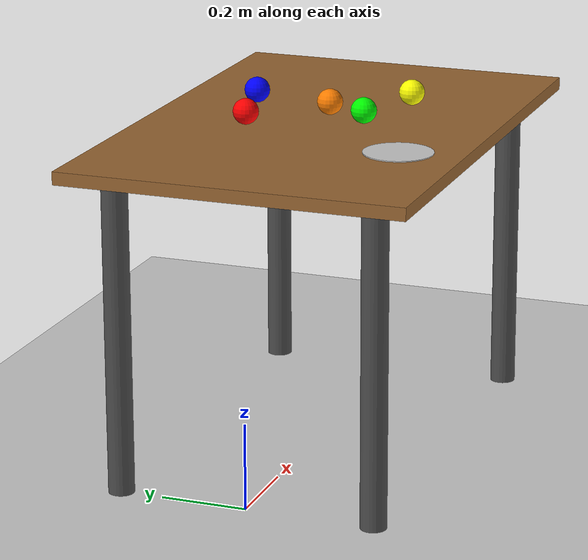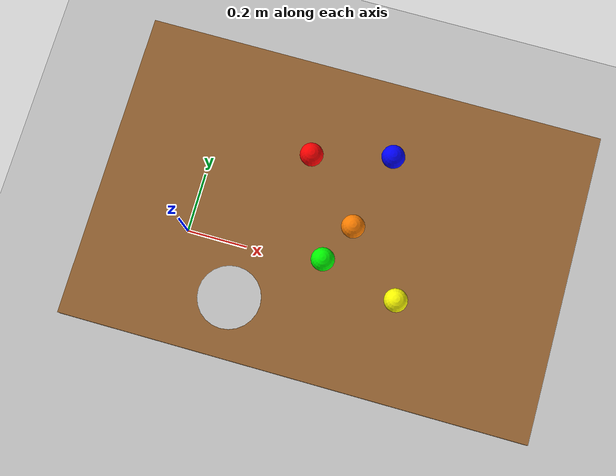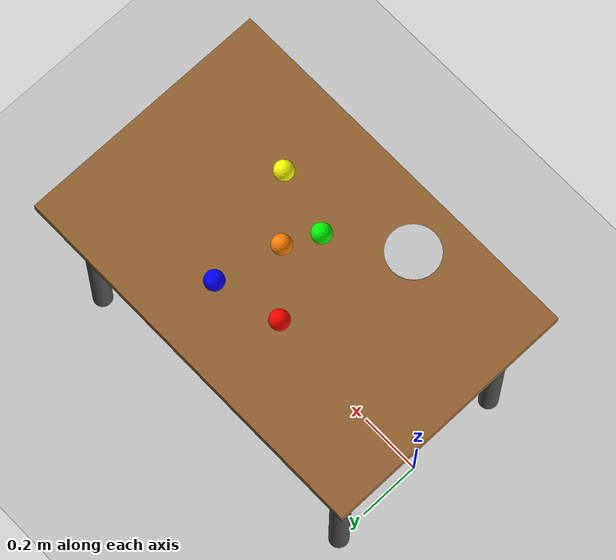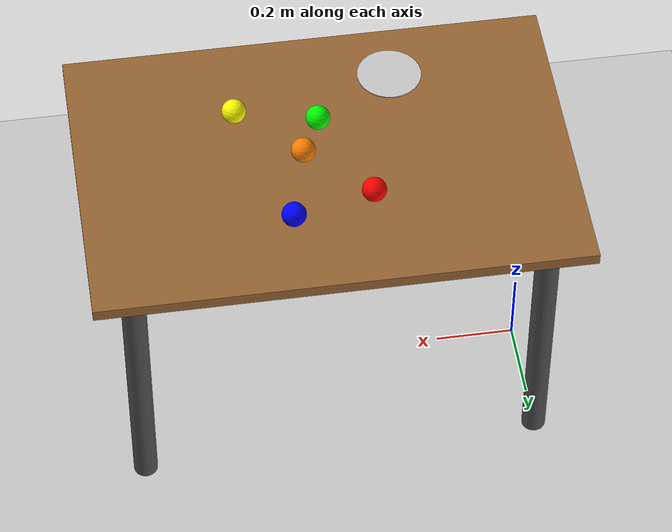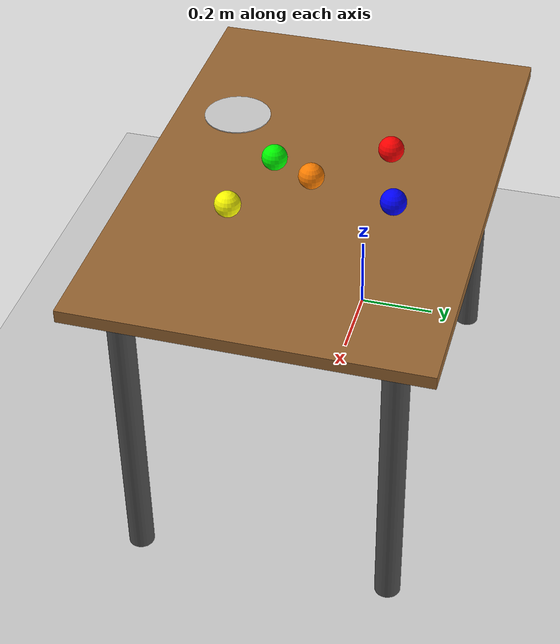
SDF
<?xml version="1.0" ?>
<!--
  Tabletop workspace for Kinova arm pick-and-place tasks.
  Features:
  - Large table (1.2m x 0.8m)
  - Colored balls for object detection
  - Proper lighting for camera visibility
-->
<sdf version="1.6">
  <world name="tabletop_workspace">

    <!-- Lighting -->
    <include>
      <uri>model://sun</uri>
    </include>

    <!-- Ground plane -->
    <include>
      <uri>model://ground_plane</uri>
    </include>

    <!-- Physics settings -->
    <physics type="ode">
      <max_step_size>0.001</max_step_size>
      <real_time_factor>1</real_time_factor>
      <real_time_update_rate>1000</real_time_update_rate>
    </physics>

    <!-- ==================== TABLE ==================== -->
    <model name="table">
      <static>true</static>
      <pose>0.5 0 0 0 0 0</pose>
      <link name="table_link">
        <!-- Table top -->
        <visual name="tabletop_visual">
          <pose>0 0 0.75 0 0 0</pose>
          <geometry>
            <box>
              <size>1.2 0.8 0.03</size>
            </box>
          </geometry>
          <material>
            <ambient>0.6 0.4 0.2 1</ambient>
            <diffuse>0.6 0.4 0.2 1</diffuse>
          </material>
        </visual>
        <collision name="tabletop_collision">
          <pose>0 0 0.75 0 0 0</pose>
          <geometry>
            <box>
              <size>1.2 0.8 0.03</size>
            </box>
          </geometry>
        </collision>

        <!-- Table legs -->
        <visual name="leg1_visual">
          <pose>0.5 0.3 0.375 0 0 0</pose>
          <geometry><cylinder><radius>0.03</radius><length>0.75</length></cylinder></geometry>
          <material><ambient>0.3 0.3 0.3 1</ambient><diffuse>0.3 0.3 0.3 1</diffuse></material>
        </visual>
        <collision name="leg1_collision">
          <pose>0.5 0.3 0.375 0 0 0</pose>
          <geometry><cylinder><radius>0.03</radius><length>0.75</length></cylinder></geometry>
        </collision>

        <visual name="leg2_visual">
          <pose>0.5 -0.3 0.375 0 0 0</pose>
          <geometry><cylinder><radius>0.03</radius><length>0.75</length></cylinder></geometry>
          <material><ambient>0.3 0.3 0.3 1</ambient><diffuse>0.3 0.3 0.3 1</diffuse></material>
        </visual>
        <collision name="leg2_collision">
          <pose>0.5 -0.3 0.375 0 0 0</pose>
          <geometry><cylinder><radius>0.03</radius><length>0.75</length></cylinder></geometry>
        </collision>

        <visual name="leg3_visual">
          <pose>-0.5 0.3 0.375 0 0 0</pose>
          <geometry><cylinder><radius>0.03</radius><length>0.75</length></cylinder></geometry>
          <material><ambient>0.3 0.3 0.3 1</ambient><diffuse>0.3 0.3 0.3 1</diffuse></material>
        </visual>
        <collision name="leg3_collision">
          <pose>-0.5 0.3 0.375 0 0 0</pose>
          <geometry><cylinder><radius>0.03</radius><length>0.75</length></cylinder></geometry>
        </collision>

        <visual name="leg4_visual">
          <pose>-0.5 -0.3 0.375 0 0 0</pose>
          <geometry><cylinder><radius>0.03</radius><length>0.75</length></cylinder></geometry>
          <material><ambient>0.3 0.3 0.3 1</ambient><diffuse>0.3 0.3 0.3 1</diffuse></material>
        </visual>
        <collision name="leg4_collision">
          <pose>-0.5 -0.3 0.375 0 0 0</pose>
          <geometry><cylinder><radius>0.03</radius><length>0.75</length></cylinder></geometry>
        </collision>
      </link>
    </model>

    <!-- ==================== COLORED BALLS ==================== -->

    <!-- Red Ball -->
    <model name="red_ball">
      <pose>0.4 0.15 0.80 0 0 0</pose>
      <link name="link">
        <inertial>
          <mass>0.05</mass>
          <inertia>
            <ixx>0.00004</ixx><ixy>0</ixy><ixz>0</ixz>
            <iyy>0.00004</iyy><iyz>0</iyz><izz>0.00004</izz>
          </inertia>
        </inertial>
        <visual name="visual">
          <geometry><sphere><radius>0.03</radius></sphere></geometry>
          <material>
            <ambient>1.0 0.0 0.0 1</ambient>
            <diffuse>1.0 0.0 0.0 1</diffuse>
            <specular>0.5 0.5 0.5 1</specular>
          </material>
        </visual>
        <collision name="collision">
          <geometry><sphere><radius>0.03</radius></sphere></geometry>
          <surface>
            <friction><ode><mu>1.0</mu><mu2>1.0</mu2></ode></friction>
          </surface>
        </collision>
      </link>
    </model>

    <!-- Green Ball -->
    <model name="green_ball">
      <pose>0.5 -0.1 0.80 0 0 0</pose>
      <link name="link">
        <inertial>
          <mass>0.05</mass>
          <inertia>
            <ixx>0.00004</ixx><ixy>0</ixy><ixz>0</ixz>
            <iyy>0.00004</iyy><iyz>0</iyz><izz>0.00004</izz>
          </inertia>
        </inertial>
        <visual name="visual">
          <geometry><sphere><radius>0.03</radius></sphere></geometry>
          <material>
            <ambient>0.0 1.0 0.0 1</ambient>
            <diffuse>0.0 1.0 0.0 1</diffuse>
            <specular>0.5 0.5 0.5 1</specular>
          </material>
        </visual>
        <collision name="collision">
          <geometry><sphere><radius>0.03</radius></sphere></geometry>
          <surface>
            <friction><ode><mu>1.0</mu><mu2>1.0</mu2></ode></friction>
          </surface>
        </collision>
      </link>
    </model>

    <!-- Blue Ball -->
    <model name="blue_ball">
      <pose>0.6 0.2 0.80 0 0 0</pose>
      <link name="link">
        <inertial>
          <mass>0.05</mass>
          <inertia>
            <ixx>0.00004</ixx><ixy>0</ixy><ixz>0</ixz>
            <iyy>0.00004</iyy><iyz>0</iyz><izz>0.00004</izz>
          </inertia>
        </inertial>
        <visual name="visual">
          <geometry><sphere><radius>0.03</radius></sphere></geometry>
          <material>
            <ambient>0.0 0.0 1.0 1</ambient>
            <diffuse>0.0 0.0 1.0 1</diffuse>
            <specular>0.5 0.5 0.5 1</specular>
          </material>
        </visual>
        <collision name="collision">
          <geometry><sphere><radius>0.03</radius></sphere></geometry>
          <surface>
            <friction><ode><mu>1.0</mu><mu2>1.0</mu2></ode></friction>
          </surface>
        </collision>
      </link>
    </model>

    <!-- Yellow Ball -->
    <model name="yellow_ball">
      <pose>0.7 -0.15 0.80 0 0 0</pose>
      <link name="link">
        <inertial>
          <mass>0.05</mass>
          <inertia>
            <ixx>0.00004</ixx><ixy>0</ixy><ixz>0</ixz>
            <iyy>0.00004</iyy><iyz>0</iyz><izz>0.00004</izz>
          </inertia>
        </inertial>
        <visual name="visual">
          <geometry><sphere><radius>0.03</radius></sphere></geometry>
          <material>
            <ambient>1.0 1.0 0.0 1</ambient>
            <diffuse>1.0 1.0 0.0 1</diffuse>
            <specular>0.5 0.5 0.5 1</specular>
          </material>
        </visual>
        <collision name="collision">
          <geometry><sphere><radius>0.03</radius></sphere></geometry>
          <surface>
            <friction><ode><mu>1.0</mu><mu2>1.0</mu2></ode></friction>
          </surface>
        </collision>
      </link>
    </model>

    <!-- Orange Ball -->
    <model name="orange_ball">
      <pose>0.55 0.0 0.80 0 0 0</pose>
      <link name="link">
        <inertial>
          <mass>0.05</mass>
          <inertia>
            <ixx>0.00004</ixx><ixy>0</ixy><ixz>0</ixz>
            <iyy>0.00004</iyy><iyz>0</iyz><izz>0.00004</izz>
          </inertia>
        </inertial>
        <visual name="visual">
          <geometry><sphere><radius>0.03</radius></sphere></geometry>
          <material>
            <ambient>1.0 0.5 0.0 1</ambient>
            <diffuse>1.0 0.5 0.0 1</diffuse>
            <specular>0.5 0.5 0.5 1</specular>
          </material>
        </visual>
        <collision name="collision">
          <geometry><sphere><radius>0.03</radius></sphere></geometry>
          <surface>
            <friction><ode><mu>1.0</mu><mu2>1.0</mu2></ode></friction>
          </surface>
        </collision>
      </link>
    </model>

    <!-- ==================== DROP ZONE MARKER ==================== -->
    <model name="drop_zone">
      <static>true</static>
      <pose>0.3 -0.25 0.765 0 0 0</pose>
      <link name="link">
        <visual name="visual">
          <geometry>
            <cylinder>
              <radius>0.08</radius>
              <length>0.005</length>
            </cylinder>
          </geometry>
          <material>
            <ambient>0.8 0.8 0.8 1</ambient>
            <diffuse>0.8 0.8 0.8 1</diffuse>
          </material>
        </visual>
      </link>
    </model>

  </world>
</sdf>
